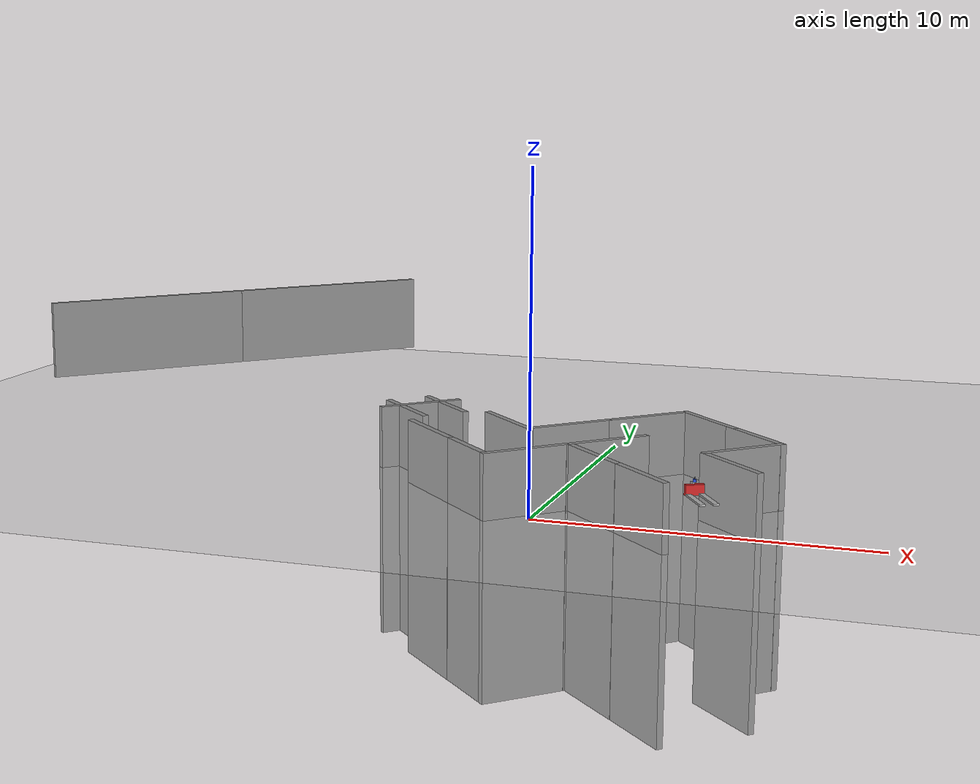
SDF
<sdf version="1.7">
 <world name="default">
  <light name="sun" type="directional">
   <pose>0 0 10 0 -0 0</pose>
   <diffuse>0.8 0.8 0.8 1</diffuse>
   <specular>0.2 0.2 0.2 1</specular>
   <attenuation>
    <range>1000</range>
    <constant>0.9</constant>
    <linear>0.01</linear>
    <quadratic>0.001</quadratic>
   </attenuation>
   <direction>-0.5 0.1 -0.9</direction>
   <spot><inner_angle>0</inner_angle><outer_angle>0</outer_angle><falloff>0</falloff></spot>
  </light>
  <gravity>0 0 -9.8</gravity>
  <magnetic_field>6e-06 2.3e-05 -4.2e-05</magnetic_field>
  <atmosphere type="adiabatic"/>
  <physics type="ode">
   <max_step_size>0.00025</max_step_size>
   <real_time_factor>1</real_time_factor>
   <real_time_update_rate>4000</real_time_update_rate>
  </physics>
  <scene><ambient>1 1 1 1</ambient><background>0.7 0.7 0.7 1</background><shadows>1</shadows></scene>
  <spherical_coordinates>
   <surface_model>EARTH_WGS84</surface_model>
   <latitude_deg>0</latitude_deg>
   <longitude_deg>0</longitude_deg>
   <elevation>0</elevation>
   <heading_deg>0</heading_deg>
  </spherical_coordinates>
  <model name="ground_plane">
   <static>1</static>
   <link name="link">
    <collision name="collision">
     <geometry><plane><normal>0 0 1</normal><size>100 100</size></plane></geometry>
     <surface>
      <contact><collide_bitmask>65535</collide_bitmask></contact>
      <friction><ode><mu>100</mu><mu2>50</mu2></ode></friction>
     </surface>
     <max_contacts>20</max_contacts>
    </collision>
    <visual name="visual">
     <cast_shadows>0</cast_shadows>
     <geometry><plane><normal>0 0 1</normal><size>100 100</size></plane></geometry>
     <material>
      <script><uri>file://media/materials/scripts/gazebo.material</uri><name>Gazebo/Grey</name></script>
     </material>
    </visual>
   </link>
   <pose>-5.10672 4.65884 0 0 -0 0</pose>
  </model>
  <model name="grey_wall">
   <static>1</static>
   <link name="link">
    <pose>0 0 1.4 0 -0 0</pose>
    <collision name="collision"><geometry><box><size>7.5 0.2 2.8</size></box></geometry></collision>
    <visual name="visual">
     <cast_shadows>0</cast_shadows>
     <geometry><box><size>7.5 0.2 2.8</size></box></geometry>
     <material>
      <script>
       <uri>model://grey_wall/materials/scripts</uri>
       <uri>model://grey_wall/materials/textures</uri>
       <name>vrc/grey_wall</name>
      </script>
     </material>
    </visual>
   </link>
   <pose>-14.0717 18.7948 0.84121 0 -0 0.808046</pose>
  </model>
  <model name="grey_wall_clone">
   <static>1</static>
   <link name="link">
    <pose>0 0 1.4 0 -0 0</pose>
    <collision name="collision"><geometry><box><size>7.5 0.2 2.8</size></box></geometry></collision>
    <visual name="visual">
     <cast_shadows>0</cast_shadows>
     <geometry><box><size>7.5 0.2 2.8</size></box></geometry>
     <material>
      <script>
       <uri>model://grey_wall/materials/scripts</uri>
       <uri>model://grey_wall/materials/textures</uri>
       <name>vrc/grey_wall</name>
      </script>
     </material>
    </visual>
   </link>
   <pose>-19.2303 13.392 0.84121 0 -0 0.808046</pose>
  </model>
  <audio><device>default</device></audio>
  <model name="grey_wall_0">
   <static>1</static>
   <link name="link">
    <pose>0 0 1.4 0 -0 0</pose>
    <collision name="collision"><geometry><box><size>7.5 0.2 2.8</size></box></geometry></collision>
    <visual name="visual">
     <cast_shadows>0</cast_shadows>
     <geometry><box><size>7.5 0.2 2.8</size></box></geometry>
     <material>
      <script>
       <uri>model://grey_wall/materials/scripts</uri>
       <uri>model://grey_wall/materials/textures</uri>
       <name>vrc/grey_wall</name>
      </script>
     </material>
    </visual>
   </link>
   <pose>4.56438 1.69685 -1.81089 0.791545 -1.57079 3.13545</pose>
  </model>
  <model name="grey_wall_0_clone">
   <static>1</static>
   <link name="link">
    <pose>0 0 1.4 0 -0 0</pose>
    <collision name="collision"><geometry><box><size>7.5 0.2 2.8</size></box></geometry></collision>
    <visual name="visual">
     <cast_shadows>0</cast_shadows>
     <geometry><box><size>7.5 0.2 2.8</size></box></geometry>
     <material>
      <script>
       <uri>model://grey_wall/materials/scripts</uri>
       <uri>model://grey_wall/materials/textures</uri>
       <name>vrc/grey_wall</name>
      </script>
     </material>
    </visual>
   </link>
   <pose>2.62661 -0.320636 -1.81089 2.34702 -1.57079 -3.13242</pose>
  </model>
  <model name="grey_wall_0_clone_0">
   <static>1</static>
   <link name="link">
    <pose>0 0 1.4 0 -0 0</pose>
    <collision name="collision"><geometry><box><size>7.5 0.2 2.8</size></box></geometry></collision>
    <visual name="visual">
     <cast_shadows>0</cast_shadows>
     <geometry><box><size>7.5 0.2 2.8</size></box></geometry>
     <material>
      <script>
       <uri>model://grey_wall/materials/scripts</uri>
       <uri>model://grey_wall/materials/textures</uri>
       <name>vrc/grey_wall</name>
      </script>
     </material>
    </visual>
   </link>
   <pose>4.3851 -2.07054 -1.81089 2.3562 -1.57079 -3.14159</pose>
  </model>
  <model name="grey_wall_0_clone_0_clone">
   <static>1</static>
   <link name="link">
    <pose>0 0 1.4 0 -0 0</pose>
    <collision name="collision"><geometry><box><size>7.5 0.2 2.8</size></box></geometry></collision>
    <visual name="visual">
     <cast_shadows>0</cast_shadows>
     <geometry><box><size>7.5 0.2 2.8</size></box></geometry>
     <material>
      <script>
       <uri>model://grey_wall/materials/scripts</uri>
       <uri>model://grey_wall/materials/textures</uri>
       <name>vrc/grey_wall</name>
      </script>
     </material>
    </visual>
   </link>
   <pose>6.56636 3.55078 -1.8109 2.35102 -1.57079 -3.13642</pose>
  </model>
  <model name="grey_wall_0_clone_0_clone_0">
   <static>1</static>
   <link name="link">
    <pose>0 0 1.4 0 -0 0</pose>
    <collision name="collision"><geometry><box><size>7.5 0.2 2.8</size></box></geometry></collision>
    <visual name="visual">
     <cast_shadows>0</cast_shadows>
     <geometry><box><size>7.5 0.2 2.8</size></box></geometry>
     <material>
      <script>
       <uri>model://grey_wall/materials/scripts</uri>
       <uri>model://grey_wall/materials/textures</uri>
       <name>vrc/grey_wall</name>
      </script>
     </material>
    </visual>
   </link>
   <pose>6.54484 -0.163097 -1.8109 2.35102 -1.57079 -3.13642</pose>
  </model>
  <model name="grey_wall_0_clone_0_clone_clone">
   <static>1</static>
   <link name="link">
    <pose>0 0 1.4 0 -0 0</pose>
    <collision name="collision"><geometry><box><size>7.5 0.2 2.8</size></box></geometry></collision>
    <visual name="visual">
     <cast_shadows>0</cast_shadows>
     <geometry><box><size>7.5 0.2 2.8</size></box></geometry>
     <material>
      <script>
       <uri>model://grey_wall/materials/scripts</uri>
       <uri>model://grey_wall/materials/textures</uri>
       <name>vrc/grey_wall</name>
      </script>
     </material>
    </visual>
   </link>
   <pose>4.85368 5.27305 -1.81089 2.35102 -1.57079 -3.13642</pose>
  </model>
  <model name="grey_wall_0_clone_0_clone_0_clone">
   <static>1</static>
   <link name="link">
    <pose>0 0 1.4 0 -0 0</pose>
    <collision name="collision"><geometry><box><size>7.5 0.2 2.8</size></box></geometry></collision>
    <visual name="visual">
     <cast_shadows>0</cast_shadows>
     <geometry><box><size>7.5 0.2 2.8</size></box></geometry>
     <material>
      <script>
       <uri>model://grey_wall/materials/scripts</uri>
       <uri>model://grey_wall/materials/textures</uri>
       <name>vrc/grey_wall</name>
      </script>
     </material>
    </visual>
   </link>
   <pose>0.601647 1.48967 -1.8109 0.778192 -1.57079 -3.13439</pose>
  </model>
  <model name="grey_wall_0_clone_0_clone_0_clone_clone">
   <static>1</static>
   <link name="link">
    <pose>0 0 1.4 0 -0 0</pose>
    <collision name="collision"><geometry><box><size>7.5 0.2 2.8</size></box></geometry></collision>
    <visual name="visual">
     <cast_shadows>0</cast_shadows>
     <geometry><box><size>7.5 0.2 2.8</size></box></geometry>
     <material>
      <script>
       <uri>model://grey_wall/materials/scripts</uri>
       <uri>model://grey_wall/materials/textures</uri>
       <name>vrc/grey_wall</name>
      </script>
     </material>
    </visual>
   </link>
   <pose>0.921102 5.16672 -1.8109 0.784397 -1.57079 -3.14059</pose>
  </model>
  <model name="grey_wall_0_clone_0_clone_0_clone_clone_0">
   <static>1</static>
   <link name="link">
    <pose>0 0 1.4 0 -0 0</pose>
    <collision name="collision"><geometry><box><size>7.5 0.2 2.8</size></box></geometry></collision>
    <visual name="visual">
     <cast_shadows>0</cast_shadows>
     <geometry><box><size>7.5 0.2 2.8</size></box></geometry>
     <material>
      <script>
       <uri>model://grey_wall/materials/scripts</uri>
       <uri>model://grey_wall/materials/textures</uri>
       <name>vrc/grey_wall</name>
      </script>
     </material>
    </visual>
   </link>
   <pose>-0.984352 3.2639 -1.8109 0.784397 -1.57079 -3.14059</pose>
  </model>
  <model name="grey_wall_0_clone_clone">
   <static>1</static>
   <link name="link">
    <pose>0 0 1.4 0 -0 0</pose>
    <collision name="collision"><geometry><box><size>7.5 0.2 2.8</size></box></geometry></collision>
    <visual name="visual">
     <cast_shadows>0</cast_shadows>
     <geometry><box><size>7.5 0.2 2.8</size></box></geometry>
     <material>
      <script>
       <uri>model://grey_wall/materials/scripts</uri>
       <uri>model://grey_wall/materials/textures</uri>
       <name>vrc/grey_wall</name>
      </script>
     </material>
    </visual>
   </link>
   <pose>-0.941612 3.1615 -1.8109 2.34702 -1.57079 -3.13242</pose>
  </model>
  <model name="grey_wall_0_clone_0_clone_0_clone_clone_1">
   <static>1</static>
   <link name="link">
    <pose>0 0 1.4 0 -0 0</pose>
    <collision name="collision"><geometry><box><size>7.5 0.2 2.8</size></box></geometry></collision>
    <visual name="visual">
     <cast_shadows>0</cast_shadows>
     <geometry><box><size>7.5 0.2 2.8</size></box></geometry>
     <material>
      <script>
       <uri>model://grey_wall/materials/scripts</uri>
       <uri>model://grey_wall/materials/textures</uri>
       <name>vrc/grey_wall</name>
      </script>
     </material>
    </visual>
   </link>
   <pose>-1.31113 -0.412604 -1.8109 0.784397 -1.57079 -3.14059</pose>
  </model>
  <model name="grey_wall_0_clone_clone_0">
   <static>1</static>
   <link name="link">
    <pose>0 0 1.4 0 -0 0</pose>
    <collision name="collision"><geometry><box><size>7.5 0.2 2.8</size></box></geometry></collision>
    <visual name="visual">
     <cast_shadows>0</cast_shadows>
     <geometry><box><size>7.5 0.2 2.8</size></box></geometry>
     <material>
      <script>
       <uri>model://grey_wall/materials/scripts</uri>
       <uri>model://grey_wall/materials/textures</uri>
       <name>vrc/grey_wall</name>
      </script>
     </material>
    </visual>
   </link>
   <pose>-1.27332 -0.302736 -1.8109 2.34702 -1.57079 -3.13242</pose>
  </model>
  <model name="grey_wall_0_clone_clone_0_clone">
   <static>1</static>
   <link name="link">
    <pose>0 0 1.4 0 -0 0</pose>
    <collision name="collision"><geometry><box><size>7.5 0.2 2.8</size></box></geometry></collision>
    <visual name="visual">
     <cast_shadows>0</cast_shadows>
     <geometry><box><size>7.5 0.2 2.8</size></box></geometry>
     <material>
      <script>
       <uri>model://grey_wall/materials/scripts</uri>
       <uri>model://grey_wall/materials/textures</uri>
       <name>vrc/grey_wall</name>
      </script>
     </material>
    </visual>
   </link>
   <pose>-2.80489 1.22051 -1.8109 2.35102 -1.57079 -3.13642</pose>
  </model>
  <model name="grey_wall_0_clone_clone_0_clone_clone">
   <static>1</static>
   <link name="link">
    <pose>0 0 1.4 0 -0 0</pose>
    <collision name="collision"><geometry><box><size>7.5 0.2 2.8</size></box></geometry></collision>
    <visual name="visual">
     <cast_shadows>0</cast_shadows>
     <geometry><box><size>7.5 0.2 2.8</size></box></geometry>
     <material>
      <script>
       <uri>model://grey_wall/materials/scripts</uri>
       <uri>model://grey_wall/materials/textures</uri>
       <name>vrc/grey_wall</name>
      </script>
     </material>
    </visual>
   </link>
   <pose>-4.53432 3.86247 -1.8109 2.35102 -1.57079 -3.13642</pose>
  </model>
  <model name="grey_wall_0_clone_clone_0_clone_clone_clone">
   <static>1</static>
   <link name="link">
    <pose>0 0 1.4 0 -0 0</pose>
    <collision name="collision"><geometry><box><size>7.5 0.2 2.8</size></box></geometry></collision>
    <visual name="visual">
     <cast_shadows>0</cast_shadows>
     <geometry><box><size>7.5 0.2 2.8</size></box></geometry>
     <material>
      <script>
       <uri>model://grey_wall/materials/scripts</uri>
       <uri>model://grey_wall/materials/textures</uri>
       <name>vrc/grey_wall</name>
      </script>
     </material>
    </visual>
   </link>
   <pose>-3.56293 4.84694 -1.8109 2.35102 -1.57079 -3.13642</pose>
  </model>
  <model name="grey_wall_0_clone_0_clone_0_clone_clone_0_clone">
   <static>1</static>
   <link name="link">
    <pose>0 0 1.4 0 -0 0</pose>
    <collision name="collision"><geometry><box><size>7.5 0.2 2.8</size></box></geometry></collision>
    <visual name="visual">
     <cast_shadows>0</cast_shadows>
     <geometry><box><size>7.5 0.2 2.8</size></box></geometry>
     <material>
      <script>
       <uri>model://grey_wall/materials/scripts</uri>
       <uri>model://grey_wall/materials/textures</uri>
       <name>vrc/grey_wall</name>
      </script>
     </material>
    </visual>
   </link>
   <pose>-6.35399 4.69712 -1.8109 0.779349 -1.57079 -3.13554</pose>
  </model>
  <model name="my_bot">
   <link name="base_link">
    <inertial>
     <pose>0.70455 -0 0.139885 0 -0 0</pose>
     <mass>43.3</mass>
     <inertia>
      <ixx>1.66514</ixx>
      <ixy>1.26765e-16</ixy>
      <ixz>-1.03897</ixz>
      <iyy>7.50231</iyy>
      <iyz>2.22557e-17</iyz>
      <izz>8.36053</izz>
     </inertia>
    </inertial>
    <collision name="base_link_fixed_joint_lump__base_plate_collision">
     <pose>1.17 0 0.25 0 -0 0</pose>
     <geometry><box><size>0.15 0.25 0.05</size></box></geometry>
    </collision>
    <collision name="base_link_fixed_joint_lump__linear_actuator_collision_1">
     <pose>1.17 0 0.325 0 -0 0</pose>
     <geometry><box><size>0.15 0.07 0.1</size></box></geometry>
    </collision>
    <collision name="base_link_fixed_joint_lump__frame_box_collision_2">
     <pose>0.99 0 0.19 0 -0 0</pose>
     <geometry><box><size>0.15 0.54 0.3</size></box></geometry>
    </collision>
    <collision name="base_link_fixed_joint_lump__left_fork_collision_3">
     <pose>0.345 0.19 0.065 0 -0 0</pose>
     <geometry><box><size>1.14 0.16 0.05</size></box></geometry>
    </collision>
    <collision name="base_link_fixed_joint_lump__right_fork_collision_4">
     <pose>0.345 -0.19 0.065 0 -0 0</pose>
     <geometry><box><size>1.14 0.16 0.05</size></box></geometry>
    </collision>
    <visual name="base_link_fixed_joint_lump__base_plate_visual">
     <pose>1.17 0 0.25 0 -0 0</pose>
     <geometry><box><size>0.15 0.25 0.05</size></box></geometry>
    </visual>
    <visual name="base_link_fixed_joint_lump__linear_actuator_visual_1">
     <pose>1.17 0 0.325 0 -0 0</pose>
     <geometry><box><size>0.15 0.07 0.1</size></box></geometry>
    </visual>
    <visual name="base_link_fixed_joint_lump__frame_box_visual_2">
     <pose>0.99 0 0.19 0 -0 0</pose>
     <geometry><box><size>0.15 0.54 0.3</size></box></geometry>
     <material>
      <script><name>Gazebo/Red</name><uri>file://media/materials/scripts/gazebo.material</uri></script>
     </material>
    </visual>
    <visual name="base_link_fixed_joint_lump__left_fork_visual_3">
     <pose>0.345 0.19 0.065 0 -0 0</pose>
     <geometry><box><size>1.14 0.16 0.05</size></box></geometry>
    </visual>
    <visual name="base_link_fixed_joint_lump__lidar_visual_4">
     <pose>0.99 0 0.44 0 -0 0</pose>
     <geometry><cylinder><length>0.07</length><radius>0.05</radius></cylinder></geometry>
     <material>
      <script><name>Gazebo/Blue</name><uri>file://media/materials/scripts/gazebo.material</uri></script>
     </material>
    </visual>
    <visual name="base_link_fixed_joint_lump__camera_link_forks_visual_5">
     <pose>0.99 0 0.54 0 0.45 3.14159</pose>
     <geometry><box><size>0.01 0.03 0.03</size></box></geometry>
     <material>
      <script><name>Gazebo/Black</name><uri>file://media/materials/scripts/gazebo.material</uri></script>
     </material>
    </visual>
    <visual name="base_link_fixed_joint_lump__camera_link_forks_visual_6">
     <pose>1.01175 -0 0.494978 0 0.45 3.14159</pose>
     <geometry><cylinder><length>0.1</length><radius>0.002</radius></cylinder></geometry>
     <material>
      <script><name>Gazebo/Black</name><uri>file://media/materials/scripts/gazebo.material</uri></script>
     </material>
    </visual>
    <visual name="base_link_fixed_joint_lump__camera_link_steering_visual_7">
     <pose>0.99 0 0.54 0 0.18 0</pose>
     <geometry><box><size>0.01 0.03 0.03</size></box></geometry>
     <material>
      <script><name>Gazebo/Black</name><uri>file://media/materials/scripts/gazebo.material</uri></script>
     </material>
    </visual>
    <visual name="base_link_fixed_joint_lump__camera_link_steering_visual_8">
     <pose>0.981049 0 0.490808 0 0.18 0</pose>
     <geometry><cylinder><length>0.1</length><radius>0.002</radius></cylinder></geometry>
     <material>
      <script><name>Gazebo/Black</name><uri>file://media/materials/scripts/gazebo.material</uri></script>
     </material>
    </visual>
    <visual name="base_link_fixed_joint_lump__right_fork_visual_9">
     <pose>0.345 -0.19 0.065 0 -0 0</pose>
     <geometry><box><size>1.14 0.16 0.05</size></box></geometry>
    </visual>
    <sensor name="lidar" type="ray">
     <visualize>0</visualize>
     <update_rate>50</update_rate>
     <ray>
      <scan>
       <horizontal>
        <samples>360</samples>
        <min_angle>-3.1415</min_angle>
        <max_angle>3.1415</max_angle>
        <resolution>1</resolution>
       </horizontal>
       <vertical><samples>16</samples><min_angle>-0.261799</min_angle><max_angle>0.261799</max_angle></vertical>
      </scan>
      <range><min>0.1</min><max>100</max></range>
     </ray>
     <plugin name="gazebo_ros" filename="libgazebo_ros_ray_sensor.so">
      <ros><argument>~/out:=CloudScan</argument></ros>
      <output_type>sensor_msgs/PointCloud2</output_type>
      <frame_name>lidar</frame_name>
     </plugin>
     <pose>0.99 0 0.44 0 -0 0</pose>
    </sensor>
    <sensor name="camera_forks" type="camera">
     <visualize>1</visualize>
     <update_rate>60</update_rate>
     <camera>
      <horizontal_fov>1.047</horizontal_fov>
      <image><format>R8G8B8</format><width>1280</width><height>720</height></image>
      <clip><near>0.05</near><far>60</far></clip>
     </camera>
     <plugin name="camera_controller_fork" filename="libgazebo_ros_camera.so">
      <frame_name>camera_link_optical_forks</frame_name>
     </plugin>
     <pose>0.99 0 0.54 0 0.45 3.14159</pose>
    </sensor>
    <sensor name="camera_steering" type="camera">
     <visualize>1</visualize>
     <update_rate>60</update_rate>
     <camera>
      <horizontal_fov>1.047</horizontal_fov>
      <image><format>R8G8B8</format><width>1280</width><height>720</height></image>
      <clip><near>0.05</near><far>60</far></clip>
     </camera>
     <plugin name="camera_controller_steering" filename="libgazebo_ros_camera.so">
      <frame_name>camera_link_optical_steering</frame_name>
     </plugin>
     <pose>0.99 0 0.54 0 0.18 0</pose>
    </sensor>
   </link>
   <joint name="fork_wheel_left_joint" type="revolute">
    <pose relative_to="base_link">0 0.19 0.0325 1.5708 -0 0</pose>
    <parent>base_link</parent>
    <child>fork_wheel_left</child>
    <axis>
     <xyz>0 0 1</xyz>
     <limit><lower>-1e+16</lower><upper>1e+16</upper></limit>
     <dynamics>
      <damping>0.1</damping>
      <friction>0.1</friction>
      <spring_reference>0</spring_reference>
      <spring_stiffness>0</spring_stiffness>
     </dynamics>
    </axis>
   </joint>
   <link name="fork_wheel_left">
    <pose relative_to="fork_wheel_left_joint">0 0 0 0 -0 0</pose>
    <inertial>
     <mass>0.3</mass>
     <inertia>
      <ixx>0.000201719</ixx>
      <ixy>0</ixy>
      <ixz>0</ixz>
      <iyy>0.000201719</iyy>
      <iyz>0</iyz>
      <izz>0.000158437</izz>
     </inertia>
    </inertial>
    <collision name="fork_wheel_left_collision">
     <geometry><sphere><radius>0.0325</radius></sphere></geometry>
     <surface><friction><ode><mu>0.9</mu><mu2>1</mu2></ode></friction></surface>
    </collision>
    <visual name="fork_wheel_left_visual">
     <geometry><cylinder><length>0.07</length><radius>0.0325</radius></cylinder></geometry>
     <material>
      <script><name>Gazebo/Red</name><uri>file://media/materials/scripts/gazebo.material</uri></script>
     </material>
    </visual>
   </link>
   <joint name="fork_wheel_right_joint" type="revolute">
    <pose relative_to="base_link">0 -0.19 0.0325 1.5708 -0 0</pose>
    <parent>base_link</parent>
    <child>fork_wheel_right</child>
    <axis>
     <xyz>0 0 1</xyz>
     <limit><lower>-1e+16</lower><upper>1e+16</upper></limit>
     <dynamics>
      <damping>0.1</damping>
      <friction>0.1</friction>
      <spring_reference>0</spring_reference>
      <spring_stiffness>0</spring_stiffness>
     </dynamics>
    </axis>
   </joint>
   <link name="fork_wheel_right">
    <pose relative_to="fork_wheel_right_joint">0 0 0 0 -0 0</pose>
    <inertial>
     <mass>0.3</mass>
     <inertia>
      <ixx>0.000201719</ixx>
      <ixy>0</ixy>
      <ixz>0</ixz>
      <iyy>0.000201719</iyy>
      <iyz>0</iyz>
      <izz>0.000158437</izz>
     </inertia>
    </inertial>
    <collision name="fork_wheel_right_collision">
     <geometry><sphere><radius>0.0325</radius></sphere></geometry>
     <surface><friction><ode><mu>0.9</mu><mu2>1</mu2></ode></friction></surface>
    </collision>
    <visual name="fork_wheel_right_visual">
     <geometry><cylinder><length>0.07</length><radius>0.0325</radius></cylinder></geometry>
     <material>
      <script><name>Gazebo/Blue</name><uri>file://media/materials/scripts/gazebo.material</uri></script>
     </material>
    </visual>
   </link>
   <joint name="steering_shaft_joint" type="revolute">
    <pose relative_to="base_link">1.17 0 0.225 0 -0 0</pose>
    <parent>base_link</parent>
    <child>steering_shaft</child>
    <axis>
     <xyz>0 0 1</xyz>
     <limit><lower>-1.5708</lower><upper>1.5708</upper><effort>1000</effort><velocity>6.28319</velocity></limit>
     <dynamics>
      <damping>1.1</damping>
      <friction>0.5</friction>
      <spring_reference>0</spring_reference>
      <spring_stiffness>0</spring_stiffness>
     </dynamics>
    </axis>
   </joint>
   <link name="steering_shaft">
    <pose relative_to="steering_shaft_joint">0 0 0 0 -0 0</pose>
    <inertial>
     <mass>0.5</mass>
     <inertia>
      <ixx>0.000729167</ixx>
      <ixy>0</ixy>
      <ixz>0</ixz>
      <iyy>0.000729167</iyy>
      <iyz>0</iyz>
      <izz>0.00015625</izz>
     </inertia>
    </inertial>
    <visual name="steering_shaft_visual">
     <pose>0 0 -0.0625 0 -0 0</pose>
     <geometry><cylinder><length>0.125</length><radius>0.025</radius></cylinder></geometry>
    </visual>
   </link>
   <joint name="steering_wheel_left_joint" type="revolute">
    <pose relative_to="steering_shaft">0 0.11 -0.125 1.5708 -0 0</pose>
    <parent>steering_shaft</parent>
    <child>steering_wheel_left</child>
    <axis>
     <xyz>0 0 -1</xyz>
     <limit><lower>-1e+16</lower><upper>1e+16</upper></limit>
     <dynamics>
      <damping>0.01</damping>
      <friction>0.01</friction>
      <spring_reference>0</spring_reference>
      <spring_stiffness>0</spring_stiffness>
     </dynamics>
    </axis>
   </joint>
   <link name="steering_wheel_left">
    <pose relative_to="steering_wheel_left_joint">0 0 0 0 -0 0</pose>
    <inertial>
     <mass>1.5</mass>
     <inertia><ixx>0.00395</ixx><ixy>0</ixy><ixz>0</ixz><iyy>0.00395</iyy><iyz>0</iyz><izz>0.0075</izz></inertia>
    </inertial>
    <collision name="steering_wheel_left_collision">
     <geometry><sphere><radius>0.1</radius></sphere></geometry>
     <surface><friction><ode><mu>0.9</mu><mu2>0.9</mu2></ode></friction></surface>
    </collision>
    <visual name="steering_wheel_left_visual">
     <geometry><cylinder><length>0.04</length><radius>0.1</radius></cylinder></geometry>
     <material>
      <script><name>Gazebo/Red</name><uri>file://media/materials/scripts/gazebo.material</uri></script>
     </material>
    </visual>
   </link>
   <joint name="steering_wheel_right_joint" type="revolute">
    <pose relative_to="steering_shaft">0 -0.11 -0.125 1.5708 -0 0</pose>
    <parent>steering_shaft</parent>
    <child>steering_wheel_right</child>
    <axis>
     <xyz>0 0 -1</xyz>
     <limit><lower>-1e+16</lower><upper>1e+16</upper></limit>
     <dynamics>
      <damping>0.01</damping>
      <friction>0.01</friction>
      <spring_reference>0</spring_reference>
      <spring_stiffness>0</spring_stiffness>
     </dynamics>
    </axis>
   </joint>
   <link name="steering_wheel_right">
    <pose relative_to="steering_wheel_right_joint">0 0 0 0 -0 0</pose>
    <inertial>
     <mass>1.5</mass>
     <inertia><ixx>0.00395</ixx><ixy>0</ixy><ixz>0</ixz><iyy>0.00395</iyy><iyz>0</iyz><izz>0.0075</izz></inertia>
    </inertial>
    <collision name="steering_wheel_right_collision">
     <geometry><sphere><radius>0.1</radius></sphere></geometry>
     <surface><friction><ode><mu>0.9</mu><mu2>0.9</mu2></ode></friction></surface>
    </collision>
    <visual name="steering_wheel_right_visual">
     <geometry><cylinder><length>0.04</length><radius>0.1</radius></cylinder></geometry>
     <material>
      <script><name>Gazebo/Blue</name><uri>file://media/materials/scripts/gazebo.material</uri></script>
     </material>
    </visual>
   </link>
   <plugin name="gazebo_ros_joint_state_publisher" filename="libgazebo_ros_joint_state_publisher.so">
    <update_rate>100</update_rate>
    <joint_name>steering_wheel_right_joint</joint_name>
    <joint_name>steering_wheel_left_joint</joint_name>
    <joint_name>steering_shaft_joint</joint_name>
    <joint_name>fork_wheel_right_joint</joint_name>
    <joint_name>fork_wheel_left_joint</joint_name>
    <joint_name>linear_actuator_joint</joint_name>
   </plugin>
   <static>0</static>
   <plugin name="gazebo_ros2_control" filename="libgazebo_ros2_control.so">
    <parameters>/home/viktor/Desktop/Palletron/ROS/install/articubot_one/share/articubot_one/config/my_controllers.yaml</parameters>
   </plugin>
   <pose>5.3626 -1.52804 1.27 -0 4e-06 2.11213</pose>
  </model>
 </world>
</sdf>
